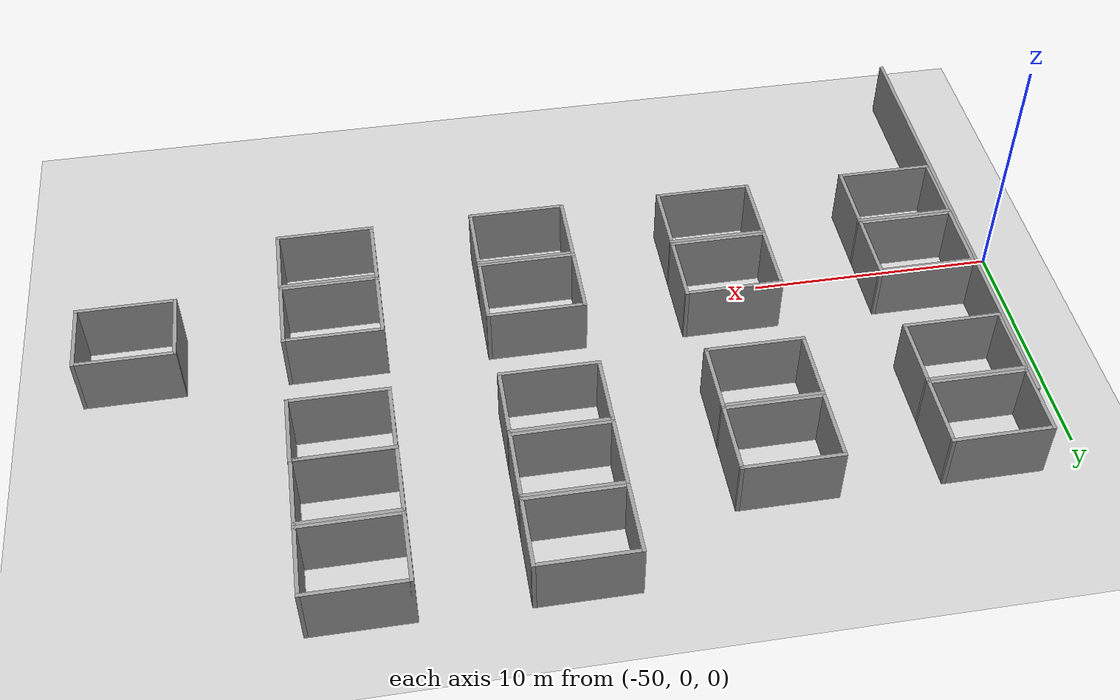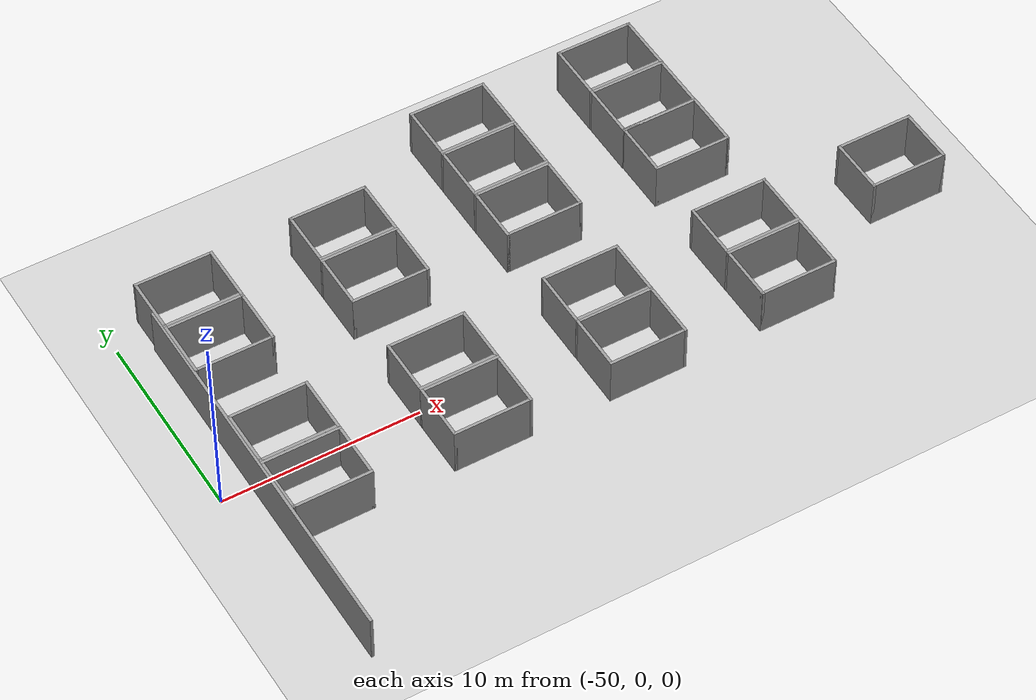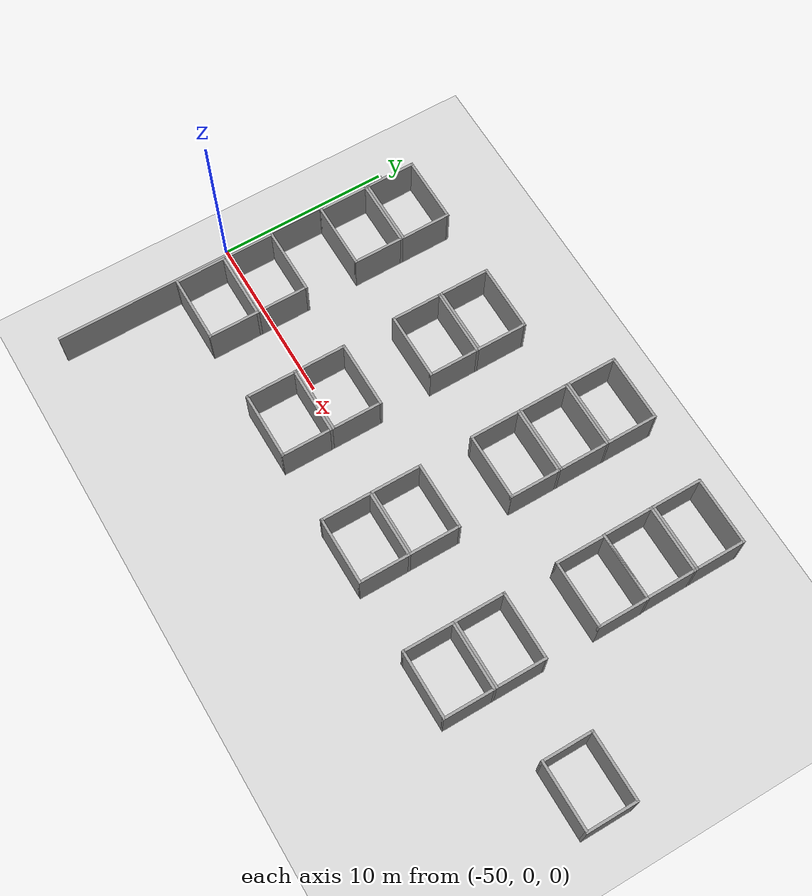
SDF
<sdf version="1.6">
 <world name="default">
  <model name="ground_plane">
   <static>1</static>
   <link name="link">
    <collision name="collision">
     <geometry><plane><normal>0 0 1</normal><size>105 105</size></plane></geometry>
     <surface>
      <contact><collide_bitmask>65535</collide_bitmask></contact>
      <friction><ode><mu>100</mu><mu2>50</mu2></ode></friction>
     </surface>
    </collision>
    <visual name="visual">
     <cast_shadows>0</cast_shadows>
     <geometry><plane><normal>0 0 1</normal><size>105 105</size></plane></geometry>
     <material>
      <script><uri>file://media/materials/scripts/gazebo.material</uri><name>Gazebo/Grey</name></script>
     </material>
    </visual>
   </link>
  </model>
  <model name="wall_v20m_0">
   <pose>-48.4193 -0.726683 0 0 -0 0</pose>
   <link name="Wall_35">
    <collision name="Wall_35_Collision">
     <geometry><box><size>20 0.15 2.5</size></box></geometry>
     <pose>0 0 1.25 0 -0 0</pose>
    </collision>
    <visual name="Wall_35_Visual">
     <pose>0 0 1.25 0 -0 0</pose>
     <geometry><box><size>20 0.15 2.5</size></box></geometry>
     <material>
      <script><uri>file://media/materials/scripts/gazebo.material</uri><name>Gazebo/Grey</name></script>
      <ambient>1 1 1 1</ambient>
     </material>
     <meta><layer>0</layer></meta>
    </visual>
    <pose>0 -0 0 0 -0 -1.5708</pose>
   </link>
   <static>1</static>
  </model>
  <model name="base3x4_42">
   <pose>-46.3729 -2.24361 0 0 -0 0</pose>
   <link name="Wall_18">
    <collision name="Wall_18_Collision">
     <geometry><box><size>3 0.15 2.5</size></box></geometry>
     <pose>0 0 1.25 0 -0 0</pose>
    </collision>
    <visual name="Wall_18_Visual">
     <pose>0 0 1.25 0 -0 0</pose>
     <geometry><box><size>3 0.15 2.5</size></box></geometry>
     <material>
      <script><uri>file://media/materials/scripts/gazebo.material</uri><name>Gazebo/Grey</name></script>
      <ambient>1 1 1 1</ambient>
     </material>
     <meta><layer>0</layer></meta>
    </visual>
    <pose>-1.925 -0 0 0 -0 -1.5708</pose>
   </link>
   <link name="Wall_19">
    <collision name="Wall_19_Collision">
     <geometry><box><size>4 0.15 2.5</size></box></geometry>
     <pose>0 0 1.25 0 -0 0</pose>
    </collision>
    <visual name="Wall_19_Visual">
     <pose>0 0 1.25 0 -0 0</pose>
     <geometry><box><size>4 0.15 2.5</size></box></geometry>
     <material>
      <script><uri>file://media/materials/scripts/gazebo.material</uri><name>Gazebo/Grey</name></script>
      <ambient>1 1 1 1</ambient>
     </material>
     <meta><layer>0</layer></meta>
    </visual>
    <pose>-0 -1.425 0 0 -0 0</pose>
   </link>
   <link name="Wall_20">
    <collision name="Wall_20_Collision">
     <geometry><box><size>3 0.15 2.5</size></box></geometry>
     <pose>0 0 1.25 0 -0 0</pose>
    </collision>
    <visual name="Wall_20_Visual">
     <pose>0 0 1.25 0 -0 0</pose>
     <geometry><box><size>3 0.15 2.5</size></box></geometry>
     <material>
      <script><uri>file://media/materials/scripts/gazebo.material</uri><name>Gazebo/Grey</name></script>
      <ambient>1 1 1 1</ambient>
     </material>
     <meta><layer>0</layer></meta>
    </visual>
    <pose>1.925 -0 0 0 -0 1.5708</pose>
   </link>
   <link name="Wall_21">
    <collision name="Wall_21_Collision">
     <geometry><box><size>4 0.15 2.5</size></box></geometry>
     <pose>0 0 1.25 0 -0 0</pose>
    </collision>
    <visual name="Wall_21_Visual">
     <pose>0 0 1.25 0 -0 0</pose>
     <geometry><box><size>4 0.15 2.5</size></box></geometry>
     <material>
      <script><uri>file://media/materials/scripts/gazebo.material</uri><name>Gazebo/Grey</name></script>
      <ambient>1 1 1 1</ambient>
     </material>
     <meta><layer>0</layer></meta>
    </visual>
    <pose>-0 1.425 0 0 -0 3.14159</pose>
   </link>
   <static>1</static>
  </model>
  <model name="base3x4_43">
   <pose>-46.3734 0.757545 0 0 -0 0</pose>
   <link name="Wall_18">
    <collision name="Wall_18_Collision">
     <geometry><box><size>3 0.15 2.5</size></box></geometry>
     <pose>0 0 1.25 0 -0 0</pose>
    </collision>
    <visual name="Wall_18_Visual">
     <pose>0 0 1.25 0 -0 0</pose>
     <geometry><box><size>3 0.15 2.5</size></box></geometry>
     <material>
      <script><uri>file://media/materials/scripts/gazebo.material</uri><name>Gazebo/Grey</name></script>
      <ambient>1 1 1 1</ambient>
     </material>
     <meta><layer>0</layer></meta>
    </visual>
    <pose>-1.925 -0 0 0 -0 -1.5708</pose>
   </link>
   <link name="Wall_19">
    <collision name="Wall_19_Collision">
     <geometry><box><size>4 0.15 2.5</size></box></geometry>
     <pose>0 0 1.25 0 -0 0</pose>
    </collision>
    <visual name="Wall_19_Visual">
     <pose>0 0 1.25 0 -0 0</pose>
     <geometry><box><size>4 0.15 2.5</size></box></geometry>
     <material>
      <script><uri>file://media/materials/scripts/gazebo.material</uri><name>Gazebo/Grey</name></script>
      <ambient>1 1 1 1</ambient>
     </material>
     <meta><layer>0</layer></meta>
    </visual>
    <pose>-0 -1.425 0 0 -0 0</pose>
   </link>
   <link name="Wall_20">
    <collision name="Wall_20_Collision">
     <geometry><box><size>3 0.15 2.5</size></box></geometry>
     <pose>0 0 1.25 0 -0 0</pose>
    </collision>
    <visual name="Wall_20_Visual">
     <pose>0 0 1.25 0 -0 0</pose>
     <geometry><box><size>3 0.15 2.5</size></box></geometry>
     <material>
      <script><uri>file://media/materials/scripts/gazebo.material</uri><name>Gazebo/Grey</name></script>
      <ambient>1 1 1 1</ambient>
     </material>
     <meta><layer>0</layer></meta>
    </visual>
    <pose>1.925 -0 0 0 -0 1.5708</pose>
   </link>
   <link name="Wall_21">
    <collision name="Wall_21_Collision">
     <geometry><box><size>4 0.15 2.5</size></box></geometry>
     <pose>0 0 1.25 0 -0 0</pose>
    </collision>
    <visual name="Wall_21_Visual">
     <pose>0 0 1.25 0 -0 0</pose>
     <geometry><box><size>4 0.15 2.5</size></box></geometry>
     <material>
      <script><uri>file://media/materials/scripts/gazebo.material</uri><name>Gazebo/Grey</name></script>
      <ambient>1 1 1 1</ambient>
     </material>
     <meta><layer>0</layer></meta>
    </visual>
    <pose>-0 1.425 0 0 -0 3.14159</pose>
   </link>
   <static>1</static>
  </model>
  <model name="base3x4_45">
   <pose>-46.3788 6.73628 0 0 -0 0</pose>
   <link name="Wall_18">
    <collision name="Wall_18_Collision">
     <geometry><box><size>3 0.15 2.5</size></box></geometry>
     <pose>0 0 1.25 0 -0 0</pose>
    </collision>
    <visual name="Wall_18_Visual">
     <pose>0 0 1.25 0 -0 0</pose>
     <geometry><box><size>3 0.15 2.5</size></box></geometry>
     <material>
      <script><uri>file://media/materials/scripts/gazebo.material</uri><name>Gazebo/Grey</name></script>
      <ambient>1 1 1 1</ambient>
     </material>
     <meta><layer>0</layer></meta>
    </visual>
    <pose>-1.925 -0 0 0 -0 -1.5708</pose>
   </link>
   <link name="Wall_19">
    <collision name="Wall_19_Collision">
     <geometry><box><size>4 0.15 2.5</size></box></geometry>
     <pose>0 0 1.25 0 -0 0</pose>
    </collision>
    <visual name="Wall_19_Visual">
     <pose>0 0 1.25 0 -0 0</pose>
     <geometry><box><size>4 0.15 2.5</size></box></geometry>
     <material>
      <script><uri>file://media/materials/scripts/gazebo.material</uri><name>Gazebo/Grey</name></script>
      <ambient>1 1 1 1</ambient>
     </material>
     <meta><layer>0</layer></meta>
    </visual>
    <pose>-0 -1.425 0 0 -0 0</pose>
   </link>
   <link name="Wall_20">
    <collision name="Wall_20_Collision">
     <geometry><box><size>3 0.15 2.5</size></box></geometry>
     <pose>0 0 1.25 0 -0 0</pose>
    </collision>
    <visual name="Wall_20_Visual">
     <pose>0 0 1.25 0 -0 0</pose>
     <geometry><box><size>3 0.15 2.5</size></box></geometry>
     <material>
      <script><uri>file://media/materials/scripts/gazebo.material</uri><name>Gazebo/Grey</name></script>
      <ambient>1 1 1 1</ambient>
     </material>
     <meta><layer>0</layer></meta>
    </visual>
    <pose>1.925 -0 0 0 -0 1.5708</pose>
   </link>
   <link name="Wall_21">
    <collision name="Wall_21_Collision">
     <geometry><box><size>4 0.15 2.5</size></box></geometry>
     <pose>0 0 1.25 0 -0 0</pose>
    </collision>
    <visual name="Wall_21_Visual">
     <pose>0 0 1.25 0 -0 0</pose>
     <geometry><box><size>4 0.15 2.5</size></box></geometry>
     <material>
      <script><uri>file://media/materials/scripts/gazebo.material</uri><name>Gazebo/Grey</name></script>
      <ambient>1 1 1 1</ambient>
     </material>
     <meta><layer>0</layer></meta>
    </visual>
    <pose>-0 1.425 0 0 -0 3.14159</pose>
   </link>
   <static>1</static>
  </model>
  <model name="base3x4_46">
   <pose>-46.3764 9.73349 0 0 -0 0</pose>
   <link name="Wall_18">
    <collision name="Wall_18_Collision">
     <geometry><box><size>3 0.15 2.5</size></box></geometry>
     <pose>0 0 1.25 0 -0 0</pose>
    </collision>
    <visual name="Wall_18_Visual">
     <pose>0 0 1.25 0 -0 0</pose>
     <geometry><box><size>3 0.15 2.5</size></box></geometry>
     <material>
      <script><uri>file://media/materials/scripts/gazebo.material</uri><name>Gazebo/Grey</name></script>
      <ambient>1 1 1 1</ambient>
     </material>
     <meta><layer>0</layer></meta>
    </visual>
    <pose>-1.925 -0 0 0 -0 -1.5708</pose>
   </link>
   <link name="Wall_19">
    <collision name="Wall_19_Collision">
     <geometry><box><size>4 0.15 2.5</size></box></geometry>
     <pose>0 0 1.25 0 -0 0</pose>
    </collision>
    <visual name="Wall_19_Visual">
     <pose>0 0 1.25 0 -0 0</pose>
     <geometry><box><size>4 0.15 2.5</size></box></geometry>
     <material>
      <script><uri>file://media/materials/scripts/gazebo.material</uri><name>Gazebo/Grey</name></script>
      <ambient>1 1 1 1</ambient>
     </material>
     <meta><layer>0</layer></meta>
    </visual>
    <pose>-0 -1.425 0 0 -0 0</pose>
   </link>
   <link name="Wall_20">
    <collision name="Wall_20_Collision">
     <geometry><box><size>3 0.15 2.5</size></box></geometry>
     <pose>0 0 1.25 0 -0 0</pose>
    </collision>
    <visual name="Wall_20_Visual">
     <pose>0 0 1.25 0 -0 0</pose>
     <geometry><box><size>3 0.15 2.5</size></box></geometry>
     <material>
      <script><uri>file://media/materials/scripts/gazebo.material</uri><name>Gazebo/Grey</name></script>
      <ambient>1 1 1 1</ambient>
     </material>
     <meta><layer>0</layer></meta>
    </visual>
    <pose>1.925 -0 0 0 -0 1.5708</pose>
   </link>
   <link name="Wall_21">
    <collision name="Wall_21_Collision">
     <geometry><box><size>4 0.15 2.5</size></box></geometry>
     <pose>0 0 1.25 0 -0 0</pose>
    </collision>
    <visual name="Wall_21_Visual">
     <pose>0 0 1.25 0 -0 0</pose>
     <geometry><box><size>4 0.15 2.5</size></box></geometry>
     <material>
      <script><uri>file://media/materials/scripts/gazebo.material</uri><name>Gazebo/Grey</name></script>
      <ambient>1 1 1 1</ambient>
     </material>
     <meta><layer>0</layer></meta>
    </visual>
    <pose>-0 1.425 0 0 -0 3.14159</pose>
   </link>
   <static>1</static>
  </model>
  <model name="base3x4_62">
   <pose>-38.3835 -2.2467 0 0 -0 0</pose>
   <link name="Wall_18">
    <collision name="Wall_18_Collision">
     <geometry><box><size>3 0.15 2.5</size></box></geometry>
     <pose>0 0 1.25 0 -0 0</pose>
    </collision>
    <visual name="Wall_18_Visual">
     <pose>0 0 1.25 0 -0 0</pose>
     <geometry><box><size>3 0.15 2.5</size></box></geometry>
     <material>
      <script><uri>file://media/materials/scripts/gazebo.material</uri><name>Gazebo/Grey</name></script>
      <ambient>1 1 1 1</ambient>
     </material>
     <meta><layer>0</layer></meta>
    </visual>
    <pose>-1.925 -0 0 0 -0 -1.5708</pose>
   </link>
   <link name="Wall_19">
    <collision name="Wall_19_Collision">
     <geometry><box><size>4 0.15 2.5</size></box></geometry>
     <pose>0 0 1.25 0 -0 0</pose>
    </collision>
    <visual name="Wall_19_Visual">
     <pose>0 0 1.25 0 -0 0</pose>
     <geometry><box><size>4 0.15 2.5</size></box></geometry>
     <material>
      <script><uri>file://media/materials/scripts/gazebo.material</uri><name>Gazebo/Grey</name></script>
      <ambient>1 1 1 1</ambient>
     </material>
     <meta><layer>0</layer></meta>
    </visual>
    <pose>-0 -1.425 0 0 -0 0</pose>
   </link>
   <link name="Wall_20">
    <collision name="Wall_20_Collision">
     <geometry><box><size>3 0.15 2.5</size></box></geometry>
     <pose>0 0 1.25 0 -0 0</pose>
    </collision>
    <visual name="Wall_20_Visual">
     <pose>0 0 1.25 0 -0 0</pose>
     <geometry><box><size>3 0.15 2.5</size></box></geometry>
     <material>
      <script><uri>file://media/materials/scripts/gazebo.material</uri><name>Gazebo/Grey</name></script>
      <ambient>1 1 1 1</ambient>
     </material>
     <meta><layer>0</layer></meta>
    </visual>
    <pose>1.925 -0 0 0 -0 1.5708</pose>
   </link>
   <link name="Wall_21">
    <collision name="Wall_21_Collision">
     <geometry><box><size>4 0.15 2.5</size></box></geometry>
     <pose>0 0 1.25 0 -0 0</pose>
    </collision>
    <visual name="Wall_21_Visual">
     <pose>0 0 1.25 0 -0 0</pose>
     <geometry><box><size>4 0.15 2.5</size></box></geometry>
     <material>
      <script><uri>file://media/materials/scripts/gazebo.material</uri><name>Gazebo/Grey</name></script>
      <ambient>1 1 1 1</ambient>
     </material>
     <meta><layer>0</layer></meta>
    </visual>
    <pose>-0 1.425 0 0 -0 3.14159</pose>
   </link>
   <static>1</static>
  </model>
  <model name="base3x4_63">
   <pose>-38.384 0.75217 0 0 -0 0</pose>
   <link name="Wall_18">
    <collision name="Wall_18_Collision">
     <geometry><box><size>3 0.15 2.5</size></box></geometry>
     <pose>0 0 1.25 0 -0 0</pose>
    </collision>
    <visual name="Wall_18_Visual">
     <pose>0 0 1.25 0 -0 0</pose>
     <geometry><box><size>3 0.15 2.5</size></box></geometry>
     <material>
      <script><uri>file://media/materials/scripts/gazebo.material</uri><name>Gazebo/Grey</name></script>
      <ambient>1 1 1 1</ambient>
     </material>
     <meta><layer>0</layer></meta>
    </visual>
    <pose>-1.925 -0 0 0 -0 -1.5708</pose>
   </link>
   <link name="Wall_19">
    <collision name="Wall_19_Collision">
     <geometry><box><size>4 0.15 2.5</size></box></geometry>
     <pose>0 0 1.25 0 -0 0</pose>
    </collision>
    <visual name="Wall_19_Visual">
     <pose>0 0 1.25 0 -0 0</pose>
     <geometry><box><size>4 0.15 2.5</size></box></geometry>
     <material>
      <script><uri>file://media/materials/scripts/gazebo.material</uri><name>Gazebo/Grey</name></script>
      <ambient>1 1 1 1</ambient>
     </material>
     <meta><layer>0</layer></meta>
    </visual>
    <pose>-0 -1.425 0 0 -0 0</pose>
   </link>
   <link name="Wall_20">
    <collision name="Wall_20_Collision">
     <geometry><box><size>3 0.15 2.5</size></box></geometry>
     <pose>0 0 1.25 0 -0 0</pose>
    </collision>
    <visual name="Wall_20_Visual">
     <pose>0 0 1.25 0 -0 0</pose>
     <geometry><box><size>3 0.15 2.5</size></box></geometry>
     <material>
      <script><uri>file://media/materials/scripts/gazebo.material</uri><name>Gazebo/Grey</name></script>
      <ambient>1 1 1 1</ambient>
     </material>
     <meta><layer>0</layer></meta>
    </visual>
    <pose>1.925 -0 0 0 -0 1.5708</pose>
   </link>
   <link name="Wall_21">
    <collision name="Wall_21_Collision">
     <geometry><box><size>4 0.15 2.5</size></box></geometry>
     <pose>0 0 1.25 0 -0 0</pose>
    </collision>
    <visual name="Wall_21_Visual">
     <pose>0 0 1.25 0 -0 0</pose>
     <geometry><box><size>4 0.15 2.5</size></box></geometry>
     <material>
      <script><uri>file://media/materials/scripts/gazebo.material</uri><name>Gazebo/Grey</name></script>
      <ambient>1 1 1 1</ambient>
     </material>
     <meta><layer>0</layer></meta>
    </visual>
    <pose>-0 1.425 0 0 -0 3.14159</pose>
   </link>
   <static>1</static>
  </model>
  <model name="base3x4_65">
   <pose>-38.4437 6.73627 0 0 -0 0</pose>
   <link name="Wall_18">
    <collision name="Wall_18_Collision">
     <geometry><box><size>3 0.15 2.5</size></box></geometry>
     <pose>0 0 1.25 0 -0 0</pose>
    </collision>
    <visual name="Wall_18_Visual">
     <pose>0 0 1.25 0 -0 0</pose>
     <geometry><box><size>3 0.15 2.5</size></box></geometry>
     <material>
      <script><uri>file://media/materials/scripts/gazebo.material</uri><name>Gazebo/Grey</name></script>
      <ambient>1 1 1 1</ambient>
     </material>
     <meta><layer>0</layer></meta>
    </visual>
    <pose>-1.925 -0 0 0 -0 -1.5708</pose>
   </link>
   <link name="Wall_19">
    <collision name="Wall_19_Collision">
     <geometry><box><size>4 0.15 2.5</size></box></geometry>
     <pose>0 0 1.25 0 -0 0</pose>
    </collision>
    <visual name="Wall_19_Visual">
     <pose>0 0 1.25 0 -0 0</pose>
     <geometry><box><size>4 0.15 2.5</size></box></geometry>
     <material>
      <script><uri>file://media/materials/scripts/gazebo.material</uri><name>Gazebo/Grey</name></script>
      <ambient>1 1 1 1</ambient>
     </material>
     <meta><layer>0</layer></meta>
    </visual>
    <pose>-0 -1.425 0 0 -0 0</pose>
   </link>
   <link name="Wall_20">
    <collision name="Wall_20_Collision">
     <geometry><box><size>3 0.15 2.5</size></box></geometry>
     <pose>0 0 1.25 0 -0 0</pose>
    </collision>
    <visual name="Wall_20_Visual">
     <pose>0 0 1.25 0 -0 0</pose>
     <geometry><box><size>3 0.15 2.5</size></box></geometry>
     <material>
      <script><uri>file://media/materials/scripts/gazebo.material</uri><name>Gazebo/Grey</name></script>
      <ambient>1 1 1 1</ambient>
     </material>
     <meta><layer>0</layer></meta>
    </visual>
    <pose>1.925 -0 0 0 -0 1.5708</pose>
   </link>
   <link name="Wall_21">
    <collision name="Wall_21_Collision">
     <geometry><box><size>4 0.15 2.5</size></box></geometry>
     <pose>0 0 1.25 0 -0 0</pose>
    </collision>
    <visual name="Wall_21_Visual">
     <pose>0 0 1.25 0 -0 0</pose>
     <geometry><box><size>4 0.15 2.5</size></box></geometry>
     <material>
      <script><uri>file://media/materials/scripts/gazebo.material</uri><name>Gazebo/Grey</name></script>
      <ambient>1 1 1 1</ambient>
     </material>
     <meta><layer>0</layer></meta>
    </visual>
    <pose>-0 1.425 0 0 -0 3.14159</pose>
   </link>
   <static>1</static>
  </model>
  <model name="base3x4_6">
   <pose>-30.4053 -2.27913 0 0 -0 0</pose>
   <link name="Wall_18">
    <collision name="Wall_18_Collision">
     <geometry><box><size>3 0.15 2.5</size></box></geometry>
     <pose>0 0 1.25 0 -0 0</pose>
    </collision>
    <visual name="Wall_18_Visual">
     <pose>0 0 1.25 0 -0 0</pose>
     <geometry><box><size>3 0.15 2.5</size></box></geometry>
     <material>
      <script><uri>file://media/materials/scripts/gazebo.material</uri><name>Gazebo/Grey</name></script>
      <ambient>1 1 1 1</ambient>
     </material>
     <meta><layer>0</layer></meta>
    </visual>
    <pose>-1.925 -0 0 0 -0 -1.5708</pose>
   </link>
   <link name="Wall_19">
    <collision name="Wall_19_Collision">
     <geometry><box><size>4 0.15 2.5</size></box></geometry>
     <pose>0 0 1.25 0 -0 0</pose>
    </collision>
    <visual name="Wall_19_Visual">
     <pose>0 0 1.25 0 -0 0</pose>
     <geometry><box><size>4 0.15 2.5</size></box></geometry>
     <material>
      <script><uri>file://media/materials/scripts/gazebo.material</uri><name>Gazebo/Grey</name></script>
      <ambient>1 1 1 1</ambient>
     </material>
     <meta><layer>0</layer></meta>
    </visual>
    <pose>-0 -1.425 0 0 -0 0</pose>
   </link>
   <link name="Wall_20">
    <collision name="Wall_20_Collision">
     <geometry><box><size>3 0.15 2.5</size></box></geometry>
     <pose>0 0 1.25 0 -0 0</pose>
    </collision>
    <visual name="Wall_20_Visual">
     <pose>0 0 1.25 0 -0 0</pose>
     <geometry><box><size>3 0.15 2.5</size></box></geometry>
     <material>
      <script><uri>file://media/materials/scripts/gazebo.material</uri><name>Gazebo/Grey</name></script>
      <ambient>1 1 1 1</ambient>
     </material>
     <meta><layer>0</layer></meta>
    </visual>
    <pose>1.925 -0 0 0 -0 1.5708</pose>
   </link>
   <link name="Wall_21">
    <collision name="Wall_21_Collision">
     <geometry><box><size>4 0.15 2.5</size></box></geometry>
     <pose>0 0 1.25 0 -0 0</pose>
    </collision>
    <visual name="Wall_21_Visual">
     <pose>0 0 1.25 0 -0 0</pose>
     <geometry><box><size>4 0.15 2.5</size></box></geometry>
     <material>
      <script><uri>file://media/materials/scripts/gazebo.material</uri><name>Gazebo/Grey</name></script>
      <ambient>1 1 1 1</ambient>
     </material>
     <meta><layer>0</layer></meta>
    </visual>
    <pose>-0 1.425 0 0 -0 3.14159</pose>
   </link>
   <static>1</static>
  </model>
  <model name="base3x4_8">
   <pose>-30.4105 0.701698 0 0 -0 0</pose>
   <link name="Wall_18">
    <collision name="Wall_18_Collision">
     <geometry><box><size>3 0.15 2.5</size></box></geometry>
     <pose>0 0 1.25 0 -0 0</pose>
    </collision>
    <visual name="Wall_18_Visual">
     <pose>0 0 1.25 0 -0 0</pose>
     <geometry><box><size>3 0.15 2.5</size></box></geometry>
     <material>
      <script><uri>file://media/materials/scripts/gazebo.material</uri><name>Gazebo/Grey</name></script>
      <ambient>1 1 1 1</ambient>
     </material>
     <meta><layer>0</layer></meta>
    </visual>
    <pose>-1.925 -0 0 0 -0 -1.5708</pose>
   </link>
   <link name="Wall_19">
    <collision name="Wall_19_Collision">
     <geometry><box><size>4 0.15 2.5</size></box></geometry>
     <pose>0 0 1.25 0 -0 0</pose>
    </collision>
    <visual name="Wall_19_Visual">
     <pose>0 0 1.25 0 -0 0</pose>
     <geometry><box><size>4 0.15 2.5</size></box></geometry>
     <material>
      <script><uri>file://media/materials/scripts/gazebo.material</uri><name>Gazebo/Grey</name></script>
      <ambient>1 1 1 1</ambient>
     </material>
     <meta><layer>0</layer></meta>
    </visual>
    <pose>-0 -1.425 0 0 -0 0</pose>
   </link>
   <link name="Wall_20">
    <collision name="Wall_20_Collision">
     <geometry><box><size>3 0.15 2.5</size></box></geometry>
     <pose>0 0 1.25 0 -0 0</pose>
    </collision>
    <visual name="Wall_20_Visual">
     <pose>0 0 1.25 0 -0 0</pose>
     <geometry><box><size>3 0.15 2.5</size></box></geometry>
     <material>
      <script><uri>file://media/materials/scripts/gazebo.material</uri><name>Gazebo/Grey</name></script>
      <ambient>1 1 1 1</ambient>
     </material>
     <meta><layer>0</layer></meta>
    </visual>
    <pose>1.925 -0 0 0 -0 1.5708</pose>
   </link>
   <link name="Wall_21">
    <collision name="Wall_21_Collision">
     <geometry><box><size>4 0.15 2.5</size></box></geometry>
     <pose>0 0 1.25 0 -0 0</pose>
    </collision>
    <visual name="Wall_21_Visual">
     <pose>0 0 1.25 0 -0 0</pose>
     <geometry><box><size>4 0.15 2.5</size></box></geometry>
     <material>
      <script><uri>file://media/materials/scripts/gazebo.material</uri><name>Gazebo/Grey</name></script>
      <ambient>1 1 1 1</ambient>
     </material>
     <meta><layer>0</layer></meta>
    </visual>
    <pose>-0 1.425 0 0 -0 3.14159</pose>
   </link>
   <static>1</static>
  </model>
  <model name="base3x4_13">
   <pose>-30.4247 6.69734 0 0 -0 0</pose>
   <link name="Wall_18">
    <collision name="Wall_18_Collision">
     <geometry><box><size>3 0.15 2.5</size></box></geometry>
     <pose>0 0 1.25 0 -0 0</pose>
    </collision>
    <visual name="Wall_18_Visual">
     <pose>0 0 1.25 0 -0 0</pose>
     <geometry><box><size>3 0.15 2.5</size></box></geometry>
     <material>
      <script><uri>file://media/materials/scripts/gazebo.material</uri><name>Gazebo/Grey</name></script>
      <ambient>1 1 1 1</ambient>
     </material>
     <meta><layer>0</layer></meta>
    </visual>
    <pose>-1.925 -0 0 0 -0 -1.5708</pose>
   </link>
   <link name="Wall_19">
    <collision name="Wall_19_Collision">
     <geometry><box><size>4 0.15 2.5</size></box></geometry>
     <pose>0 0 1.25 0 -0 0</pose>
    </collision>
    <visual name="Wall_19_Visual">
     <pose>0 0 1.25 0 -0 0</pose>
     <geometry><box><size>4 0.15 2.5</size></box></geometry>
     <material>
      <script><uri>file://media/materials/scripts/gazebo.material</uri><name>Gazebo/Grey</name></script>
      <ambient>1 1 1 1</ambient>
     </material>
     <meta><layer>0</layer></meta>
    </visual>
    <pose>-0 -1.425 0 0 -0 0</pose>
   </link>
   <link name="Wall_20">
    <collision name="Wall_20_Collision">
     <geometry><box><size>3 0.15 2.5</size></box></geometry>
     <pose>0 0 1.25 0 -0 0</pose>
    </collision>
    <visual name="Wall_20_Visual">
     <pose>0 0 1.25 0 -0 0</pose>
     <geometry><box><size>3 0.15 2.5</size></box></geometry>
     <material>
      <script><uri>file://media/materials/scripts/gazebo.material</uri><name>Gazebo/Grey</name></script>
      <ambient>1 1 1 1</ambient>
     </material>
     <meta><layer>0</layer></meta>
    </visual>
    <pose>1.925 -0 0 0 -0 1.5708</pose>
   </link>
   <link name="Wall_21">
    <collision name="Wall_21_Collision">
     <geometry><box><size>4 0.15 2.5</size></box></geometry>
     <pose>0 0 1.25 0 -0 0</pose>
    </collision>
    <visual name="Wall_21_Visual">
     <pose>0 0 1.25 0 -0 0</pose>
     <geometry><box><size>4 0.15 2.5</size></box></geometry>
     <material>
      <script><uri>file://media/materials/scripts/gazebo.material</uri><name>Gazebo/Grey</name></script>
      <ambient>1 1 1 1</ambient>
     </material>
     <meta><layer>0</layer></meta>
    </visual>
    <pose>-0 1.425 0 0 -0 3.14159</pose>
   </link>
   <static>1</static>
  </model>
  <model name="base3x4_70">
   <pose>-22.4069 -2.22304 0 0 -0 0</pose>
   <link name="Wall_18">
    <collision name="Wall_18_Collision">
     <geometry><box><size>3 0.15 2.5</size></box></geometry>
     <pose>0 0 1.25 0 -0 0</pose>
    </collision>
    <visual name="Wall_18_Visual">
     <pose>0 0 1.25 0 -0 0</pose>
     <geometry><box><size>3 0.15 2.5</size></box></geometry>
     <material>
      <script><uri>file://media/materials/scripts/gazebo.material</uri><name>Gazebo/Grey</name></script>
      <ambient>1 1 1 1</ambient>
     </material>
     <meta><layer>0</layer></meta>
    </visual>
    <pose>-1.925 -0 0 0 -0 -1.5708</pose>
   </link>
   <link name="Wall_19">
    <collision name="Wall_19_Collision">
     <geometry><box><size>4 0.15 2.5</size></box></geometry>
     <pose>0 0 1.25 0 -0 0</pose>
    </collision>
    <visual name="Wall_19_Visual">
     <pose>0 0 1.25 0 -0 0</pose>
     <geometry><box><size>4 0.15 2.5</size></box></geometry>
     <material>
      <script><uri>file://media/materials/scripts/gazebo.material</uri><name>Gazebo/Grey</name></script>
      <ambient>1 1 1 1</ambient>
     </material>
     <meta><layer>0</layer></meta>
    </visual>
    <pose>-0 -1.425 0 0 -0 0</pose>
   </link>
   <link name="Wall_20">
    <collision name="Wall_20_Collision">
     <geometry><box><size>3 0.15 2.5</size></box></geometry>
     <pose>0 0 1.25 0 -0 0</pose>
    </collision>
    <visual name="Wall_20_Visual">
     <pose>0 0 1.25 0 -0 0</pose>
     <geometry><box><size>3 0.15 2.5</size></box></geometry>
     <material>
      <script><uri>file://media/materials/scripts/gazebo.material</uri><name>Gazebo/Grey</name></script>
      <ambient>1 1 1 1</ambient>
     </material>
     <meta><layer>0</layer></meta>
    </visual>
    <pose>1.925 -0 0 0 -0 1.5708</pose>
   </link>
   <link name="Wall_21">
    <collision name="Wall_21_Collision">
     <geometry><box><size>4 0.15 2.5</size></box></geometry>
     <pose>0 0 1.25 0 -0 0</pose>
    </collision>
    <visual name="Wall_21_Visual">
     <pose>0 0 1.25 0 -0 0</pose>
     <geometry><box><size>4 0.15 2.5</size></box></geometry>
     <material>
      <script><uri>file://media/materials/scripts/gazebo.material</uri><name>Gazebo/Grey</name></script>
      <ambient>1 1 1 1</ambient>
     </material>
     <meta><layer>0</layer></meta>
    </visual>
    <pose>-0 1.425 0 0 -0 3.14159</pose>
   </link>
   <static>1</static>
  </model>
  <model name="base3x4_71">
   <pose>-22.4105 0.763278 0 0 -0 0</pose>
   <link name="Wall_18">
    <collision name="Wall_18_Collision">
     <geometry><box><size>3 0.15 2.5</size></box></geometry>
     <pose>0 0 1.25 0 -0 0</pose>
    </collision>
    <visual name="Wall_18_Visual">
     <pose>0 0 1.25 0 -0 0</pose>
     <geometry><box><size>3 0.15 2.5</size></box></geometry>
     <material>
      <script><uri>file://media/materials/scripts/gazebo.material</uri><name>Gazebo/Grey</name></script>
      <ambient>1 1 1 1</ambient>
     </material>
     <meta><layer>0</layer></meta>
    </visual>
    <pose>-1.925 -0 0 0 -0 -1.5708</pose>
   </link>
   <link name="Wall_19">
    <collision name="Wall_19_Collision">
     <geometry><box><size>4 0.15 2.5</size></box></geometry>
     <pose>0 0 1.25 0 -0 0</pose>
    </collision>
    <visual name="Wall_19_Visual">
     <pose>0 0 1.25 0 -0 0</pose>
     <geometry><box><size>4 0.15 2.5</size></box></geometry>
     <material>
      <script><uri>file://media/materials/scripts/gazebo.material</uri><name>Gazebo/Grey</name></script>
      <ambient>1 1 1 1</ambient>
     </material>
     <meta><layer>0</layer></meta>
    </visual>
    <pose>-0 -1.425 0 0 -0 0</pose>
   </link>
   <link name="Wall_20">
    <collision name="Wall_20_Collision">
     <geometry><box><size>3 0.15 2.5</size></box></geometry>
     <pose>0 0 1.25 0 -0 0</pose>
    </collision>
    <visual name="Wall_20_Visual">
     <pose>0 0 1.25 0 -0 0</pose>
     <geometry><box><size>3 0.15 2.5</size></box></geometry>
     <material>
      <script><uri>file://media/materials/scripts/gazebo.material</uri><name>Gazebo/Grey</name></script>
      <ambient>1 1 1 1</ambient>
     </material>
     <meta><layer>0</layer></meta>
    </visual>
    <pose>1.925 -0 0 0 -0 1.5708</pose>
   </link>
   <link name="Wall_21">
    <collision name="Wall_21_Collision">
     <geometry><box><size>4 0.15 2.5</size></box></geometry>
     <pose>0 0 1.25 0 -0 0</pose>
    </collision>
    <visual name="Wall_21_Visual">
     <pose>0 0 1.25 0 -0 0</pose>
     <geometry><box><size>4 0.15 2.5</size></box></geometry>
     <material>
      <script><uri>file://media/materials/scripts/gazebo.material</uri><name>Gazebo/Grey</name></script>
      <ambient>1 1 1 1</ambient>
     </material>
     <meta><layer>0</layer></meta>
    </visual>
    <pose>-0 1.425 0 0 -0 3.14159</pose>
   </link>
   <static>1</static>
  </model>
  <model name="base3x4_73">
   <pose>-22.4114 6.74221 0 0 -0 0</pose>
   <link name="Wall_18">
    <collision name="Wall_18_Collision">
     <geometry><box><size>3 0.15 2.5</size></box></geometry>
     <pose>0 0 1.25 0 -0 0</pose>
    </collision>
    <visual name="Wall_18_Visual">
     <pose>0 0 1.25 0 -0 0</pose>
     <geometry><box><size>3 0.15 2.5</size></box></geometry>
     <material>
      <script><uri>file://media/materials/scripts/gazebo.material</uri><name>Gazebo/Grey</name></script>
      <ambient>1 1 1 1</ambient>
     </material>
     <meta><layer>0</layer></meta>
    </visual>
    <pose>-1.925 -0 0 0 -0 -1.5708</pose>
   </link>
   <link name="Wall_19">
    <collision name="Wall_19_Collision">
     <geometry><box><size>4 0.15 2.5</size></box></geometry>
     <pose>0 0 1.25 0 -0 0</pose>
    </collision>
    <visual name="Wall_19_Visual">
     <pose>0 0 1.25 0 -0 0</pose>
     <geometry><box><size>4 0.15 2.5</size></box></geometry>
     <material>
      <script><uri>file://media/materials/scripts/gazebo.material</uri><name>Gazebo/Grey</name></script>
      <ambient>1 1 1 1</ambient>
     </material>
     <meta><layer>0</layer></meta>
    </visual>
    <pose>-0 -1.425 0 0 -0 0</pose>
   </link>
   <link name="Wall_20">
    <collision name="Wall_20_Collision">
     <geometry><box><size>3 0.15 2.5</size></box></geometry>
     <pose>0 0 1.25 0 -0 0</pose>
    </collision>
    <visual name="Wall_20_Visual">
     <pose>0 0 1.25 0 -0 0</pose>
     <geometry><box><size>3 0.15 2.5</size></box></geometry>
     <material>
      <script><uri>file://media/materials/scripts/gazebo.material</uri><name>Gazebo/Grey</name></script>
      <ambient>1 1 1 1</ambient>
     </material>
     <meta><layer>0</layer></meta>
    </visual>
    <pose>1.925 -0 0 0 -0 1.5708</pose>
   </link>
   <link name="Wall_21">
    <collision name="Wall_21_Collision">
     <geometry><box><size>4 0.15 2.5</size></box></geometry>
     <pose>0 0 1.25 0 -0 0</pose>
    </collision>
    <visual name="Wall_21_Visual">
     <pose>0 0 1.25 0 -0 0</pose>
     <geometry><box><size>4 0.15 2.5</size></box></geometry>
     <material>
      <script><uri>file://media/materials/scripts/gazebo.material</uri><name>Gazebo/Grey</name></script>
      <ambient>1 1 1 1</ambient>
     </material>
     <meta><layer>0</layer></meta>
    </visual>
    <pose>-0 1.425 0 0 -0 3.14159</pose>
   </link>
   <static>1</static>
  </model>
  <model name="base3x4_79">
   <pose>-14.4206 0.731399 0 0 -0 0</pose>
   <link name="Wall_18">
    <collision name="Wall_18_Collision">
     <geometry><box><size>3 0.15 2.5</size></box></geometry>
     <pose>0 0 1.25 0 -0 0</pose>
    </collision>
    <visual name="Wall_18_Visual">
     <pose>0 0 1.25 0 -0 0</pose>
     <geometry><box><size>3 0.15 2.5</size></box></geometry>
     <material>
      <script><uri>file://media/materials/scripts/gazebo.material</uri><name>Gazebo/Grey</name></script>
      <ambient>1 1 1 1</ambient>
     </material>
     <meta><layer>0</layer></meta>
    </visual>
    <pose>-1.925 -0 0 0 -0 -1.5708</pose>
   </link>
   <link name="Wall_19">
    <collision name="Wall_19_Collision">
     <geometry><box><size>4 0.15 2.5</size></box></geometry>
     <pose>0 0 1.25 0 -0 0</pose>
    </collision>
    <visual name="Wall_19_Visual">
     <pose>0 0 1.25 0 -0 0</pose>
     <geometry><box><size>4 0.15 2.5</size></box></geometry>
     <material>
      <script><uri>file://media/materials/scripts/gazebo.material</uri><name>Gazebo/Grey</name></script>
      <ambient>1 1 1 1</ambient>
     </material>
     <meta><layer>0</layer></meta>
    </visual>
    <pose>-0 -1.425 0 0 -0 0</pose>
   </link>
   <link name="Wall_20">
    <collision name="Wall_20_Collision">
     <geometry><box><size>3 0.15 2.5</size></box></geometry>
     <pose>0 0 1.25 0 -0 0</pose>
    </collision>
    <visual name="Wall_20_Visual">
     <pose>0 0 1.25 0 -0 0</pose>
     <geometry><box><size>3 0.15 2.5</size></box></geometry>
     <material>
      <script><uri>file://media/materials/scripts/gazebo.material</uri><name>Gazebo/Grey</name></script>
      <ambient>1 1 1 1</ambient>
     </material>
     <meta><layer>0</layer></meta>
    </visual>
    <pose>1.925 -0 0 0 -0 1.5708</pose>
   </link>
   <link name="Wall_21">
    <collision name="Wall_21_Collision">
     <geometry><box><size>4 0.15 2.5</size></box></geometry>
     <pose>0 0 1.25 0 -0 0</pose>
    </collision>
    <visual name="Wall_21_Visual">
     <pose>0 0 1.25 0 -0 0</pose>
     <geometry><box><size>4 0.15 2.5</size></box></geometry>
     <material>
      <script><uri>file://media/materials/scripts/gazebo.material</uri><name>Gazebo/Grey</name></script>
      <ambient>1 1 1 1</ambient>
     </material>
     <meta><layer>0</layer></meta>
    </visual>
    <pose>-0 1.425 0 0 -0 3.14159</pose>
   </link>
   <static>1</static>
  </model>
  <model name="base3x4_50">
   <pose>-22.4338 9.61846 0 0 -0 0</pose>
   <link name="Wall_18">
    <collision name="Wall_18_Collision">
     <geometry><box><size>3 0.15 2.5</size></box></geometry>
     <pose>0 0 1.25 0 -0 0</pose>
    </collision>
    <visual name="Wall_18_Visual">
     <pose>0 0 1.25 0 -0 0</pose>
     <geometry><box><size>3 0.15 2.5</size></box></geometry>
     <material>
      <script><uri>file://media/materials/scripts/gazebo.material</uri><name>Gazebo/Grey</name></script>
      <ambient>1 1 1 1</ambient>
     </material>
     <meta><layer>0</layer></meta>
    </visual>
    <pose>-1.925 -0 0 0 -0 -1.5708</pose>
   </link>
   <link name="Wall_19">
    <collision name="Wall_19_Collision">
     <geometry><box><size>4 0.15 2.5</size></box></geometry>
     <pose>0 0 1.25 0 -0 0</pose>
    </collision>
    <visual name="Wall_19_Visual">
     <pose>0 0 1.25 0 -0 0</pose>
     <geometry><box><size>4 0.15 2.5</size></box></geometry>
     <material>
      <script><uri>file://media/materials/scripts/gazebo.material</uri><name>Gazebo/Grey</name></script>
      <ambient>1 1 1 1</ambient>
     </material>
     <meta><layer>0</layer></meta>
    </visual>
    <pose>-0 -1.425 0 0 -0 0</pose>
   </link>
   <link name="Wall_20">
    <collision name="Wall_20_Collision">
     <geometry><box><size>3 0.15 2.5</size></box></geometry>
     <pose>0 0 1.25 0 -0 0</pose>
    </collision>
    <visual name="Wall_20_Visual">
     <pose>0 0 1.25 0 -0 0</pose>
     <geometry><box><size>3 0.15 2.5</size></box></geometry>
     <material>
      <script><uri>file://media/materials/scripts/gazebo.material</uri><name>Gazebo/Grey</name></script>
      <ambient>1 1 1 1</ambient>
     </material>
     <meta><layer>0</layer></meta>
    </visual>
    <pose>1.925 -0 0 0 -0 1.5708</pose>
   </link>
   <link name="Wall_21">
    <collision name="Wall_21_Collision">
     <geometry><box><size>4 0.15 2.5</size></box></geometry>
     <pose>0 0 1.25 0 -0 0</pose>
    </collision>
    <visual name="Wall_21_Visual">
     <pose>0 0 1.25 0 -0 0</pose>
     <geometry><box><size>4 0.15 2.5</size></box></geometry>
     <material>
      <script><uri>file://media/materials/scripts/gazebo.material</uri><name>Gazebo/Grey</name></script>
      <ambient>1 1 1 1</ambient>
     </material>
     <meta><layer>0</layer></meta>
    </visual>
    <pose>-0 1.425 0 0 -0 3.14159</pose>
   </link>
   <static>1</static>
  </model>
  <model name="base3x4_4">
   <pose>-30.4282 9.69605 0 0 -0 0</pose>
   <link name="Wall_18">
    <collision name="Wall_18_Collision">
     <geometry><box><size>3 0.15 2.5</size></box></geometry>
     <pose>0 0 1.25 0 -0 0</pose>
    </collision>
    <visual name="Wall_18_Visual">
     <pose>0 0 1.25 0 -0 0</pose>
     <geometry><box><size>3 0.15 2.5</size></box></geometry>
     <material>
      <script><uri>file://media/materials/scripts/gazebo.material</uri><name>Gazebo/Grey</name></script>
      <ambient>1 1 1 1</ambient>
     </material>
     <meta><layer>0</layer></meta>
    </visual>
    <pose>-1.925 -0 0 0 -0 -1.5708</pose>
   </link>
   <link name="Wall_19">
    <collision name="Wall_19_Collision">
     <geometry><box><size>4 0.15 2.5</size></box></geometry>
     <pose>0 0 1.25 0 -0 0</pose>
    </collision>
    <visual name="Wall_19_Visual">
     <pose>0 0 1.25 0 -0 0</pose>
     <geometry><box><size>4 0.15 2.5</size></box></geometry>
     <material>
      <script><uri>file://media/materials/scripts/gazebo.material</uri><name>Gazebo/Grey</name></script>
      <ambient>1 1 1 1</ambient>
     </material>
     <meta><layer>0</layer></meta>
    </visual>
    <pose>-0 -1.425 0 0 -0 0</pose>
   </link>
   <link name="Wall_20">
    <collision name="Wall_20_Collision">
     <geometry><box><size>3 0.15 2.5</size></box></geometry>
     <pose>0 0 1.25 0 -0 0</pose>
    </collision>
    <visual name="Wall_20_Visual">
     <pose>0 0 1.25 0 -0 0</pose>
     <geometry><box><size>3 0.15 2.5</size></box></geometry>
     <material>
      <script><uri>file://media/materials/scripts/gazebo.material</uri><name>Gazebo/Grey</name></script>
      <ambient>1 1 1 1</ambient>
     </material>
     <meta><layer>0</layer></meta>
    </visual>
    <pose>1.925 -0 0 0 -0 1.5708</pose>
   </link>
   <link name="Wall_21">
    <collision name="Wall_21_Collision">
     <geometry><box><size>4 0.15 2.5</size></box></geometry>
     <pose>0 0 1.25 0 -0 0</pose>
    </collision>
    <visual name="Wall_21_Visual">
     <pose>0 0 1.25 0 -0 0</pose>
     <geometry><box><size>4 0.15 2.5</size></box></geometry>
     <material>
      <script><uri>file://media/materials/scripts/gazebo.material</uri><name>Gazebo/Grey</name></script>
      <ambient>1 1 1 1</ambient>
     </material>
     <meta><layer>0</layer></meta>
    </visual>
    <pose>-0 1.425 0 0 -0 3.14159</pose>
   </link>
   <static>1</static>
  </model>
  <model name="base3x4_10">
   <pose>-38.4448 9.72417 0 0 -0 0</pose>
   <link name="Wall_18">
    <collision name="Wall_18_Collision">
     <geometry><box><size>3 0.15 2.5</size></box></geometry>
     <pose>0 0 1.25 0 -0 0</pose>
    </collision>
    <visual name="Wall_18_Visual">
     <pose>0 0 1.25 0 -0 0</pose>
     <geometry><box><size>3 0.15 2.5</size></box></geometry>
     <material>
      <script><uri>file://media/materials/scripts/gazebo.material</uri><name>Gazebo/Grey</name></script>
      <ambient>1 1 1 1</ambient>
     </material>
     <meta><layer>0</layer></meta>
    </visual>
    <pose>-1.925 -0 0 0 -0 -1.5708</pose>
   </link>
   <link name="Wall_19">
    <collision name="Wall_19_Collision">
     <geometry><box><size>4 0.15 2.5</size></box></geometry>
     <pose>0 0 1.25 0 -0 0</pose>
    </collision>
    <visual name="Wall_19_Visual">
     <pose>0 0 1.25 0 -0 0</pose>
     <geometry><box><size>4 0.15 2.5</size></box></geometry>
     <material>
      <script><uri>file://media/materials/scripts/gazebo.material</uri><name>Gazebo/Grey</name></script>
      <ambient>1 1 1 1</ambient>
     </material>
     <meta><layer>0</layer></meta>
    </visual>
    <pose>-0 -1.425 0 0 -0 0</pose>
   </link>
   <link name="Wall_20">
    <collision name="Wall_20_Collision">
     <geometry><box><size>3 0.15 2.5</size></box></geometry>
     <pose>0 0 1.25 0 -0 0</pose>
    </collision>
    <visual name="Wall_20_Visual">
     <pose>0 0 1.25 0 -0 0</pose>
     <geometry><box><size>3 0.15 2.5</size></box></geometry>
     <material>
      <script><uri>file://media/materials/scripts/gazebo.material</uri><name>Gazebo/Grey</name></script>
      <ambient>1 1 1 1</ambient>
     </material>
     <meta><layer>0</layer></meta>
    </visual>
    <pose>1.925 -0 0 0 -0 1.5708</pose>
   </link>
   <link name="Wall_21">
    <collision name="Wall_21_Collision">
     <geometry><box><size>4 0.15 2.5</size></box></geometry>
     <pose>0 0 1.25 0 -0 0</pose>
    </collision>
    <visual name="Wall_21_Visual">
     <pose>0 0 1.25 0 -0 0</pose>
     <geometry><box><size>4 0.15 2.5</size></box></geometry>
     <material>
      <script><uri>file://media/materials/scripts/gazebo.material</uri><name>Gazebo/Grey</name></script>
      <ambient>1 1 1 1</ambient>
     </material>
     <meta><layer>0</layer></meta>
    </visual>
    <pose>-0 1.425 0 0 -0 3.14159</pose>
   </link>
   <static>1</static>
  </model>
  <model name="base3x4_16">
   <pose>-22.4359 12.6153 0 0 -0 0</pose>
   <link name="Wall_18">
    <collision name="Wall_18_Collision">
     <geometry><box><size>3 0.15 2.5</size></box></geometry>
     <pose>0 0 1.25 0 -0 0</pose>
    </collision>
    <visual name="Wall_18_Visual">
     <pose>0 0 1.25 0 -0 0</pose>
     <geometry><box><size>3 0.15 2.5</size></box></geometry>
     <material>
      <script><uri>file://media/materials/scripts/gazebo.material</uri><name>Gazebo/Grey</name></script>
      <ambient>1 1 1 1</ambient>
     </material>
     <meta><layer>0</layer></meta>
    </visual>
    <pose>-1.925 -0 0 0 -0 -1.5708</pose>
   </link>
   <link name="Wall_19">
    <collision name="Wall_19_Collision">
     <geometry><box><size>4 0.15 2.5</size></box></geometry>
     <pose>0 0 1.25 0 -0 0</pose>
    </collision>
    <visual name="Wall_19_Visual">
     <pose>0 0 1.25 0 -0 0</pose>
     <geometry><box><size>4 0.15 2.5</size></box></geometry>
     <material>
      <script><uri>file://media/materials/scripts/gazebo.material</uri><name>Gazebo/Grey</name></script>
      <ambient>1 1 1 1</ambient>
     </material>
     <meta><layer>0</layer></meta>
    </visual>
    <pose>-0 -1.425 0 0 -0 0</pose>
   </link>
   <link name="Wall_20">
    <collision name="Wall_20_Collision">
     <geometry><box><size>3 0.15 2.5</size></box></geometry>
     <pose>0 0 1.25 0 -0 0</pose>
    </collision>
    <visual name="Wall_20_Visual">
     <pose>0 0 1.25 0 -0 0</pose>
     <geometry><box><size>3 0.15 2.5</size></box></geometry>
     <material>
      <script><uri>file://media/materials/scripts/gazebo.material</uri><name>Gazebo/Grey</name></script>
      <ambient>1 1 1 1</ambient>
     </material>
     <meta><layer>0</layer></meta>
    </visual>
    <pose>1.925 -0 0 0 -0 1.5708</pose>
   </link>
   <link name="Wall_21">
    <collision name="Wall_21_Collision">
     <geometry><box><size>4 0.15 2.5</size></box></geometry>
     <pose>0 0 1.25 0 -0 0</pose>
    </collision>
    <visual name="Wall_21_Visual">
     <pose>0 0 1.25 0 -0 0</pose>
     <geometry><box><size>4 0.15 2.5</size></box></geometry>
     <material>
      <script><uri>file://media/materials/scripts/gazebo.material</uri><name>Gazebo/Grey</name></script>
      <ambient>1 1 1 1</ambient>
     </material>
     <meta><layer>0</layer></meta>
    </visual>
    <pose>-0 1.425 0 0 -0 3.14159</pose>
   </link>
   <static>1</static>
  </model>
  <model name="base3x4_20">
   <pose>-30.4266 12.6856 0 0 -0 0</pose>
   <link name="Wall_18">
    <collision name="Wall_18_Collision">
     <geometry><box><size>3 0.15 2.5</size></box></geometry>
     <pose>0 0 1.25 0 -0 0</pose>
    </collision>
    <visual name="Wall_18_Visual">
     <pose>0 0 1.25 0 -0 0</pose>
     <geometry><box><size>3 0.15 2.5</size></box></geometry>
     <material>
      <script><uri>file://media/materials/scripts/gazebo.material</uri><name>Gazebo/Grey</name></script>
      <ambient>1 1 1 1</ambient>
     </material>
     <meta><layer>0</layer></meta>
    </visual>
    <pose>-1.925 -0 0 0 -0 -1.5708</pose>
   </link>
   <link name="Wall_19">
    <collision name="Wall_19_Collision">
     <geometry><box><size>4 0.15 2.5</size></box></geometry>
     <pose>0 0 1.25 0 -0 0</pose>
    </collision>
    <visual name="Wall_19_Visual">
     <pose>0 0 1.25 0 -0 0</pose>
     <geometry><box><size>4 0.15 2.5</size></box></geometry>
     <material>
      <script><uri>file://media/materials/scripts/gazebo.material</uri><name>Gazebo/Grey</name></script>
      <ambient>1 1 1 1</ambient>
     </material>
     <meta><layer>0</layer></meta>
    </visual>
    <pose>-0 -1.425 0 0 -0 0</pose>
   </link>
   <link name="Wall_20">
    <collision name="Wall_20_Collision">
     <geometry><box><size>3 0.15 2.5</size></box></geometry>
     <pose>0 0 1.25 0 -0 0</pose>
    </collision>
    <visual name="Wall_20_Visual">
     <pose>0 0 1.25 0 -0 0</pose>
     <geometry><box><size>3 0.15 2.5</size></box></geometry>
     <material>
      <script><uri>file://media/materials/scripts/gazebo.material</uri><name>Gazebo/Grey</name></script>
      <ambient>1 1 1 1</ambient>
     </material>
     <meta><layer>0</layer></meta>
    </visual>
    <pose>1.925 -0 0 0 -0 1.5708</pose>
   </link>
   <link name="Wall_21">
    <collision name="Wall_21_Collision">
     <geometry><box><size>4 0.15 2.5</size></box></geometry>
     <pose>0 0 1.25 0 -0 0</pose>
    </collision>
    <visual name="Wall_21_Visual">
     <pose>0 0 1.25 0 -0 0</pose>
     <geometry><box><size>4 0.15 2.5</size></box></geometry>
     <material>
      <script><uri>file://media/materials/scripts/gazebo.material</uri><name>Gazebo/Grey</name></script>
      <ambient>1 1 1 1</ambient>
     </material>
     <meta><layer>0</layer></meta>
    </visual>
    <pose>-0 1.425 0 0 -0 3.14159</pose>
   </link>
   <static>1</static>
  </model>
 </world>
</sdf>
